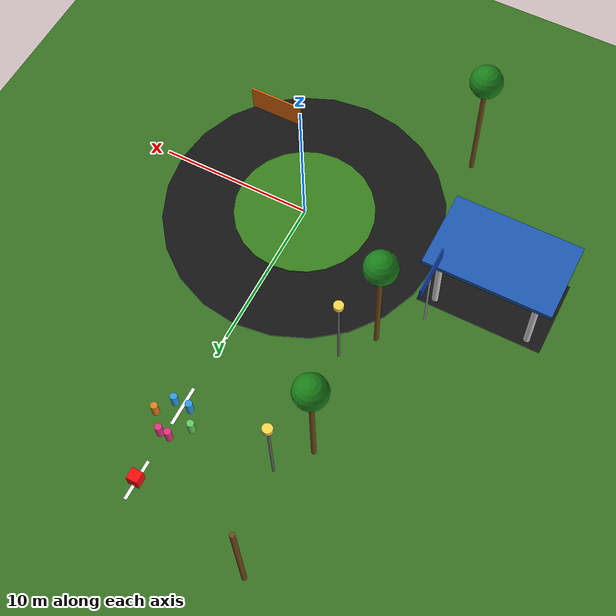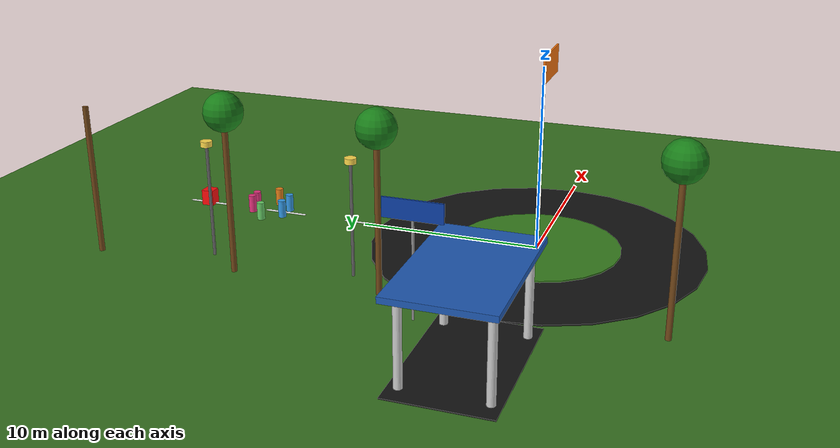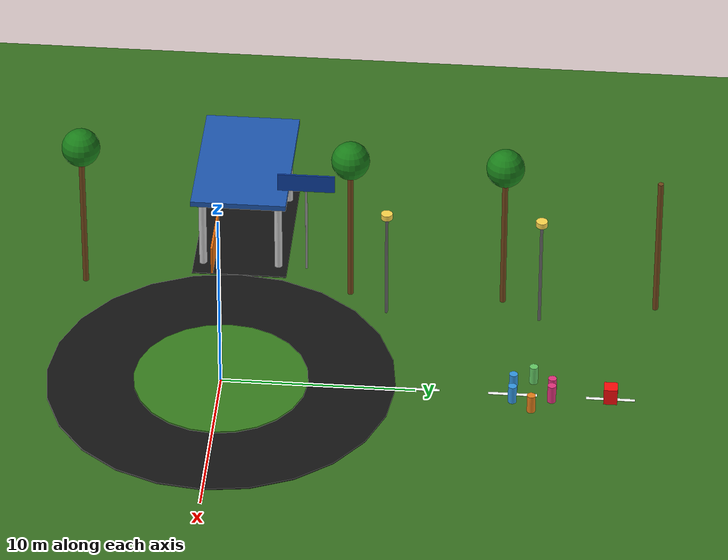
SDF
<sdf version="1.6">
 <world name="srm_campus">
  <model name="ground_grass">
   <static>true</static>
   <link name="link">
    <collision name="col">
     <geometry><plane><normal>0 0 1</normal><size>300 300</size></plane></geometry>
     <surface><friction><ode><mu>0.8</mu><mu2>0.8</mu2></ode></friction></surface>
    </collision>
    <visual name="vis">
     <cast_shadows>false</cast_shadows>
     <geometry><plane><normal>0 0 1</normal><size>300 300</size></plane></geometry>
     <material>
      <ambient>0.18 0.38 0.10 1</ambient>
      <diffuse>0.22 0.45 0.13 1</diffuse>
      <specular>0.02 0.02 0.02 1</specular>
     </material>
    </visual>
   </link>
  </model>
  <model name="wn01">
   <static>true</static>
   <pose>0  5 0.07 0 0 0</pose>
   <link name="l">
    <collision name="c"><geometry><box><size>0.20 2.5 0.01</size></box></geometry></collision>
    <visual name="v">
     <geometry><box><size>0.20 2.5 0.01</size></box></geometry>
     <material><ambient>1 1 1 1</ambient><diffuse>1 1 1 1</diffuse></material>
    </visual>
   </link>
  </model>
  <model name="wn02">
   <static>true</static>
   <pose>0 10 0.07 0 0 0</pose>
   <link name="l">
    <collision name="c"><geometry><box><size>0.20 2.5 0.01</size></box></geometry></collision>
    <visual name="v">
     <geometry><box><size>0.20 2.5 0.01</size></box></geometry>
     <material><ambient>1 1 1 1</ambient><diffuse>1 1 1 1</diffuse></material>
    </visual>
   </link>
  </model>
  <model name="wn03">
   <static>true</static>
   <pose>0 15 0.07 0 0 0</pose>
   <link name="l">
    <collision name="c"><geometry><box><size>0.20 2.5 0.01</size></box></geometry></collision>
    <visual name="v">
     <geometry><box><size>0.20 2.5 0.01</size></box></geometry>
     <material><ambient>1 1 1 1</ambient><diffuse>1 1 1 1</diffuse></material>
    </visual>
   </link>
  </model>
  <model name="wn04">
   <static>true</static>
   <pose>0 20 0.07 0 0 0</pose>
   <link name="l">
    <collision name="c"><geometry><box><size>0.20 2.5 0.01</size></box></geometry></collision>
    <visual name="v">
     <geometry><box><size>0.20 2.5 0.01</size></box></geometry>
     <material><ambient>1 1 1 1</ambient><diffuse>1 1 1 1</diffuse></material>
    </visual>
   </link>
  </model>
  <model name="ws01">
   <static>true</static>
   <pose>0  -5 0.07 0 0 0</pose>
   <link name="l">
    <collision name="c"><geometry><box><size>0.20 2.5 0.01</size></box></geometry></collision>
    <visual name="v">
     <geometry><box><size>0.20 2.5 0.01</size></box></geometry>
     <material><ambient>1 1 1 1</ambient><diffuse>1 1 1 1</diffuse></material>
    </visual>
   </link>
  </model>
  <model name="sl_nl1">
   <static>true</static>
   <pose>-6.5  8 3 0 0 0</pose>
   <link name="l">
    <collision name="c">
     <geometry><cylinder><radius>0.08</radius><length>6</length></cylinder></geometry>
    </collision>
    <visual name="trunk">
     <geometry><cylinder><radius>0.08</radius><length>6</length></cylinder></geometry>
     <material><ambient>0.4 0.4 0.4 1</ambient><diffuse>0.4 0.4 0.4 1</diffuse></material>
    </visual>
   </link>
  </model>
  <model name="sl_nl1h">
   <static>true</static>
   <pose>-6.5  8 6.2 0 0 0</pose>
   <link name="l">
    <collision name="c">
     <geometry><cylinder><radius>0.3</radius><length>0.3</length></cylinder></geometry>
    </collision>
    <visual name="v">
     <geometry><cylinder><radius>0.3</radius><length>0.3</length></cylinder></geometry>
     <material><ambient>0.95 0.75 0.2 1</ambient><diffuse>1.0 0.85 0.3 1</diffuse></material>
    </visual>
   </link>
  </model>
  <model name="sl_nl2">
   <static>true</static>
   <pose>-6.5 16 3 0 0 0</pose>
   <link name="l">
    <collision name="c">
     <geometry><cylinder><radius>0.08</radius><length>6</length></cylinder></geometry>
    </collision>
    <visual name="trunk">
     <geometry><cylinder><radius>0.08</radius><length>6</length></cylinder></geometry>
     <material><ambient>0.4 0.4 0.4 1</ambient><diffuse>0.4 0.4 0.4 1</diffuse></material>
    </visual>
   </link>
  </model>
  <model name="sl_nl2h">
   <static>true</static>
   <pose>-6.5 16 6.2 0 0 0</pose>
   <link name="l">
    <collision name="c">
     <geometry><cylinder><radius>0.3</radius><length>0.3</length></cylinder></geometry>
    </collision>
    <visual name="v">
     <geometry><cylinder><radius>0.3</radius><length>0.3</length></cylinder></geometry>
     <material><ambient>0.95 0.75 0.2 1</ambient><diffuse>1.0 0.85 0.3 1</diffuse></material>
    </visual>
   </link>
  </model>
  <model name="pt_nl1">
   <static>true</static>
   <pose>-8  6 4 0 0 0</pose>
   <link name="l">
    <collision name="c">
     <geometry><cylinder><radius>0.15</radius><length>8</length></cylinder></geometry>
    </collision>
    <visual name="v">
     <geometry><cylinder><radius>0.15</radius><length>8</length></cylinder></geometry>
     <material><ambient>0.45 0.28 0.10 1</ambient><diffuse>0.45 0.28 0.10 1</diffuse></material>
    </visual>
   </link>
  </model>
  <model name="pt_nl1t">
   <static>true</static>
   <pose>-8  6 8.5 0 0 0</pose>
   <link name="l">
    <collision name="c"><geometry><sphere><radius>1.0</radius></sphere></geometry></collision>
    <visual name="v">
     <geometry><sphere><radius>1.0</radius></sphere></geometry>
     <material><ambient>0.08 0.45 0.08 1</ambient><diffuse>0.10 0.50 0.10 1</diffuse></material>
    </visual>
   </link>
  </model>
  <model name="pt_nl2">
   <static>true</static>
   <pose>-8 14 4 0 0 0</pose>
   <link name="l">
    <collision name="c">
     <geometry><cylinder><radius>0.15</radius><length>8</length></cylinder></geometry>
    </collision>
    <visual name="v">
     <geometry><cylinder><radius>0.15</radius><length>8</length></cylinder></geometry>
     <material><ambient>0.45 0.28 0.10 1</ambient><diffuse>0.45 0.28 0.10 1</diffuse></material>
    </visual>
   </link>
  </model>
  <model name="pt_nl2t">
   <static>true</static>
   <pose>-8 14 8.5 0 0 0</pose>
   <link name="l">
    <collision name="c"><geometry><sphere><radius>1.0</radius></sphere></geometry></collision>
    <visual name="v">
     <geometry><sphere><radius>1.0</radius></sphere></geometry>
     <material><ambient>0.08 0.45 0.08 1</ambient><diffuse>0.10 0.50 0.10 1</diffuse></material>
    </visual>
   </link>
  </model>
  <model name="pt_nl3">
   <static>true</static>
   <pose>-8 22 4 0 0 0</pose>
   <link name="l">
    <collision name="c">
     <geometry><cylinder><radius>0.15</radius><length>8</length></cylinder></geometry>
    </collision>
    <visual name="v">
     <geometry><cylinder><radius>0.15</radius><length>8</length></cylinder></geometry>
     <material><ambient>0.45 0.28 0.10 1</ambient><diffuse>0.45 0.28 0.10 1</diffuse></material>
    </visual>
   </link>
  </model>
  <model name="pt_sl1">
   <static>true</static>
   <pose>-8  -8 4 0 0 0</pose>
   <link name="l">
    <collision name="c">
     <geometry><cylinder><radius>0.15</radius><length>8</length></cylinder></geometry>
    </collision>
    <visual name="v">
     <geometry><cylinder><radius>0.15</radius><length>8</length></cylinder></geometry>
     <material><ambient>0.45 0.28 0.10 1</ambient><diffuse>0.45 0.28 0.10 1</diffuse></material>
    </visual>
   </link>
  </model>
  <model name="pt_sl1t">
   <static>true</static>
   <pose>-8  -8 8.5 0 0 0</pose>
   <link name="l">
    <collision name="c"><geometry><sphere><radius>1.0</radius></sphere></geometry></collision>
    <visual name="v">
     <geometry><sphere><radius>1.0</radius></sphere></geometry>
     <material><ambient>0.08 0.45 0.08 1</ambient><diffuse>0.10 0.50 0.10 1</diffuse></material>
    </visual>
   </link>
  </model>
  <model name="roundabout_road">
   <static>true</static>
   <pose>0 0 0.04 0 0 0</pose>
   <link name="link">
    <collision name="col">
     <geometry><cylinder><radius>9.0</radius><length>0.08</length></cylinder></geometry>
    </collision>
    <visual name="vis">
     <geometry><cylinder><radius>9.0</radius><length>0.08</length></cylinder></geometry>
     <material><ambient>0.06 0.06 0.06 1</ambient><diffuse>0.08 0.08 0.08 1</diffuse></material>
    </visual>
   </link>
  </model>
  <model name="roundabout_island">
   <static>true</static>
   <pose>0 0 0.10 0 0 0</pose>
   <link name="link">
    <collision name="col">
     <geometry><cylinder><radius>4.5</radius><length>0.12</length></cylinder></geometry>
    </collision>
    <visual name="vis">
     <geometry><cylinder><radius>4.5</radius><length>0.12</length></cylinder></geometry>
     <material><ambient>0.18 0.42 0.10 1</ambient><diffuse>0.22 0.50 0.12 1</diffuse></material>
    </visual>
   </link>
  </model>
  <model name="flagpole">
   <static>true</static>
   <pose>0 0 5 0 0 0</pose>
   <link name="link">
    <collision name="col">
     <geometry><cylinder><radius>0.08</radius><length>10</length></cylinder></geometry>
    </collision>
    <visual name="vis">
     <geometry><cylinder><radius>0.08</radius><length>10</length></cylinder></geometry>
     <material><ambient>0.7 0.7 0.7 1</ambient><diffuse>0.7 0.7 0.7 1</diffuse></material>
    </visual>
   </link>
  </model>
  <model name="flag">
   <static>true</static>
   <pose>1.5 0 9.8 0 0 0</pose>
   <link name="link">
    <collision name="col"><geometry><box><size>3.0 0.1 1.5</size></box></geometry></collision>
    <visual name="vis">
     <geometry><box><size>3.0 0.1 1.5</size></box></geometry>
     <material><ambient>0.95 0.45 0.05 1</ambient><diffuse>0.95 0.45 0.05 1</diffuse></material>
    </visual>
   </link>
  </model>
  <model name="hub_shelter_roof">
   <static>true</static>
   <pose>-13 0 4.5 0 0 0</pose>
   <link name="link">
    <collision name="col"><geometry><box><size>8 5 0.3</size></box></geometry></collision>
    <visual name="vis">
     <geometry><box><size>8 5 0.3</size></box></geometry>
     <material><ambient>0.10 0.30 0.65 1</ambient><diffuse>0.12 0.35 0.70 1</diffuse></material>
    </visual>
   </link>
  </model>
  <model name="hub_col1">
   <static>true</static>
   <pose>-10 -2 2 0 0 0</pose>
   <link name="l">
    <collision name="c">
     <geometry><cylinder><radius>0.2</radius><length>4</length></cylinder></geometry>
    </collision>
    <visual name="v">
     <geometry><cylinder><radius>0.2</radius><length>4</length></cylinder></geometry>
     <material><ambient>0.8 0.8 0.8 1</ambient><diffuse>0.8 0.8 0.8 1</diffuse></material>
    </visual>
   </link>
  </model>
  <model name="hub_col2">
   <static>true</static>
   <pose>-10  2 2 0 0 0</pose>
   <link name="l">
    <collision name="c">
     <geometry><cylinder><radius>0.2</radius><length>4</length></cylinder></geometry>
    </collision>
    <visual name="v">
     <geometry><cylinder><radius>0.2</radius><length>4</length></cylinder></geometry>
     <material><ambient>0.8 0.8 0.8 1</ambient><diffuse>0.8 0.8 0.8 1</diffuse></material>
    </visual>
   </link>
  </model>
  <model name="hub_col3">
   <static>true</static>
   <pose>-16 -2 2 0 0 0</pose>
   <link name="l">
    <collision name="c">
     <geometry><cylinder><radius>0.2</radius><length>4</length></cylinder></geometry>
    </collision>
    <visual name="v">
     <geometry><cylinder><radius>0.2</radius><length>4</length></cylinder></geometry>
     <material><ambient>0.8 0.8 0.8 1</ambient><diffuse>0.8 0.8 0.8 1</diffuse></material>
    </visual>
   </link>
  </model>
  <model name="hub_col4">
   <static>true</static>
   <pose>-16  2 2 0 0 0</pose>
   <link name="l">
    <collision name="c">
     <geometry><cylinder><radius>0.2</radius><length>4</length></cylinder></geometry>
    </collision>
    <visual name="v">
     <geometry><cylinder><radius>0.2</radius><length>4</length></cylinder></geometry>
     <material><ambient>0.8 0.8 0.8 1</ambient><diffuse>0.8 0.8 0.8 1</diffuse></material>
    </visual>
   </link>
  </model>
  <model name="hub_bay">
   <static>true</static>
   <pose>-13 0 0.05 0 0 0</pose>
   <link name="link">
    <collision name="col"><geometry><box><size>8 5 0.06</size></box></geometry></collision>
    <visual name="vis">
     <geometry><box><size>8 5 0.06</size></box></geometry>
     <material><ambient>0.06 0.06 0.06 1</ambient><diffuse>0.08 0.08 0.08 1</diffuse></material>
    </visual>
   </link>
  </model>
  <model name="hub_sign_pole">
   <static>true</static>
   <pose>-10 3.5 2.5 0 0 0</pose>
   <link name="l">
    <collision name="c">
     <geometry><cylinder><radius>0.06</radius><length>5</length></cylinder></geometry>
    </collision>
    <visual name="v">
     <geometry><cylinder><radius>0.06</radius><length>5</length></cylinder></geometry>
     <material><ambient>0.6 0.6 0.6 1</ambient><diffuse>0.6 0.6 0.6 1</diffuse></material>
    </visual>
   </link>
  </model>
  <model name="hub_sign_board">
   <static>true</static>
   <pose>-10 3.5 5.5 0 0 0</pose>
   <link name="l">
    <collision name="c"><geometry><box><size>0.1 3 1</size></box></geometry></collision>
    <visual name="v">
     <geometry><box><size>0.1 3 1</size></box></geometry>
     <material><ambient>0.05 0.25 0.65 1</ambient><diffuse>0.05 0.25 0.65 1</diffuse></material>
    </visual>
   </link>
  </model>
  <model name="obstacle_1">
   <static>false</static>
   <pose>0 20 0.45 0 0 0</pose>
   <link name="link">
    <collision name="col"><geometry><box><size>0.7 0.7 0.9</size></box></geometry></collision>
    <visual name="vis">
     <geometry><box><size>0.7 0.7 0.9</size></box></geometry>
     <material><ambient>1 0.05 0.05 1</ambient><diffuse>1 0.05 0.05 1</diffuse></material>
    </visual>
    <inertial>
     <mass>5</mass>
     <inertia><ixx>0.4</ixx><ixy>0</ixy><ixz>0</ixz><iyy>0.4</iyy><iyz>0</iyz><izz>0.4</izz></inertia>
    </inertial>
   </link>
  </model>
  <model name="cp1">
   <static>false</static>
   <pose>0.5 15 0.5 0 0 0</pose>
   <link name="l">
    <collision name="c">
     <geometry><cylinder><radius>0.22</radius><length>1.0</length></cylinder></geometry>
    </collision>
    <visual name="v">
     <geometry><cylinder><radius>0.22</radius><length>1.0</length></cylinder></geometry>
     <material><ambient>0.2 0.6 0.9 1</ambient><diffuse>0.2 0.6 0.9 1</diffuse></material>
    </visual>
    <inertial>
     <mass>2</mass>
     <inertia><ixx>0.1</ixx><ixy>0</ixy><ixz>0</ixz><iyy>0.1</iyy><iyz>0</iyz><izz>0.1</izz></inertia>
    </inertial>
   </link>
  </model>
  <model name="cp2">
   <static>false</static>
   <pose>-0.5 15 0.5 0 0 0</pose>
   <link name="l">
    <collision name="c">
     <geometry><cylinder><radius>0.22</radius><length>1.0</length></cylinder></geometry>
    </collision>
    <visual name="v">
     <geometry><cylinder><radius>0.22</radius><length>1.0</length></cylinder></geometry>
     <material><ambient>0.2 0.6 0.9 1</ambient><diffuse>0.2 0.6 0.9 1</diffuse></material>
    </visual>
    <inertial>
     <mass>2</mass>
     <inertia><ixx>0.1</ixx><ixy>0</ixy><ixz>0</ixz><iyy>0.1</iyy><iyz>0</iyz><izz>0.1</izz></inertia>
    </inertial>
   </link>
  </model>
  <model name="cp3">
   <static>false</static>
   <pose>1.2 16 0.5 0 0 0</pose>
   <link name="l">
    <collision name="c">
     <geometry><cylinder><radius>0.22</radius><length>1.0</length></cylinder></geometry>
    </collision>
    <visual name="v">
     <geometry><cylinder><radius>0.22</radius><length>1.0</length></cylinder></geometry>
     <material><ambient>0.9 0.5 0.1 1</ambient><diffuse>0.9 0.5 0.1 1</diffuse></material>
    </visual>
    <inertial>
     <mass>2</mass>
     <inertia><ixx>0.1</ixx><ixy>0</ixy><ixz>0</ixz><iyy>0.1</iyy><iyz>0</iyz><izz>0.1</izz></inertia>
    </inertial>
   </link>
  </model>
  <model name="cp4">
   <static>false</static>
   <pose>-1.2 16 0.5 0 0 0</pose>
   <link name="l">
    <collision name="c">
     <geometry><cylinder><radius>0.22</radius><length>1.0</length></cylinder></geometry>
    </collision>
    <visual name="v">
     <geometry><cylinder><radius>0.22</radius><length>1.0</length></cylinder></geometry>
     <material><ambient>0.4 0.8 0.4 1</ambient><diffuse>0.4 0.8 0.4 1</diffuse></material>
    </visual>
    <inertial>
     <mass>2</mass>
     <inertia><ixx>0.1</ixx><ixy>0</ixy><ixz>0</ixz><iyy>0.1</iyy><iyz>0</iyz><izz>0.1</izz></inertia>
    </inertial>
   </link>
  </model>
  <model name="cp5">
   <static>false</static>
   <pose>0.3 17 0.5 0 0 0</pose>
   <link name="l">
    <collision name="c">
     <geometry><cylinder><radius>0.22</radius><length>1.0</length></cylinder></geometry>
    </collision>
    <visual name="v">
     <geometry><cylinder><radius>0.22</radius><length>1.0</length></cylinder></geometry>
     <material><ambient>0.9 0.2 0.5 1</ambient><diffuse>0.9 0.2 0.5 1</diffuse></material>
    </visual>
    <inertial>
     <mass>2</mass>
     <inertia><ixx>0.1</ixx><ixy>0</ixy><ixz>0</ixz><iyy>0.1</iyy><iyz>0</iyz><izz>0.1</izz></inertia>
    </inertial>
   </link>
  </model>
  <model name="cp6">
   <static>false</static>
   <pose>-0.3 17 0.5 0 0 0</pose>
   <link name="l">
    <collision name="c">
     <geometry><cylinder><radius>0.22</radius><length>1.0</length></cylinder></geometry>
    </collision>
    <visual name="v">
     <geometry><cylinder><radius>0.22</radius><length>1.0</length></cylinder></geometry>
     <material><ambient>0.9 0.2 0.5 1</ambient><diffuse>0.9 0.2 0.5 1</diffuse></material>
    </visual>
    <inertial>
     <mass>2</mass>
     <inertia><ixx>0.1</ixx><ixy>0</ixy><ixz>0</ixz><iyy>0.1</iyy><iyz>0</iyz><izz>0.1</izz></inertia>
    </inertial>
   </link>
  </model>
 </world>
</sdf>
